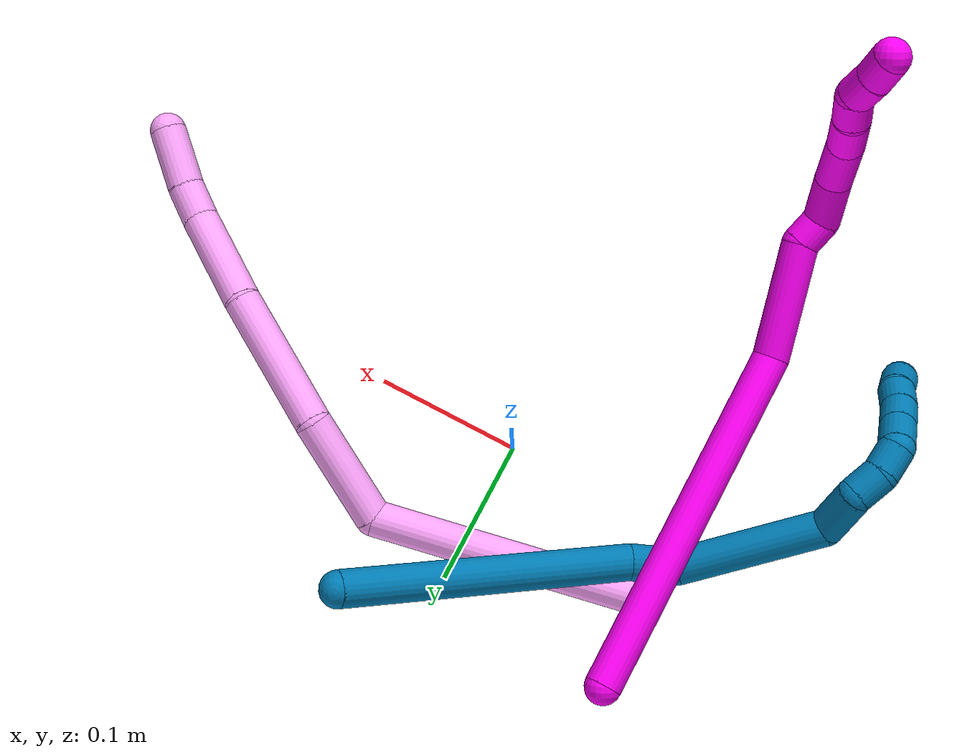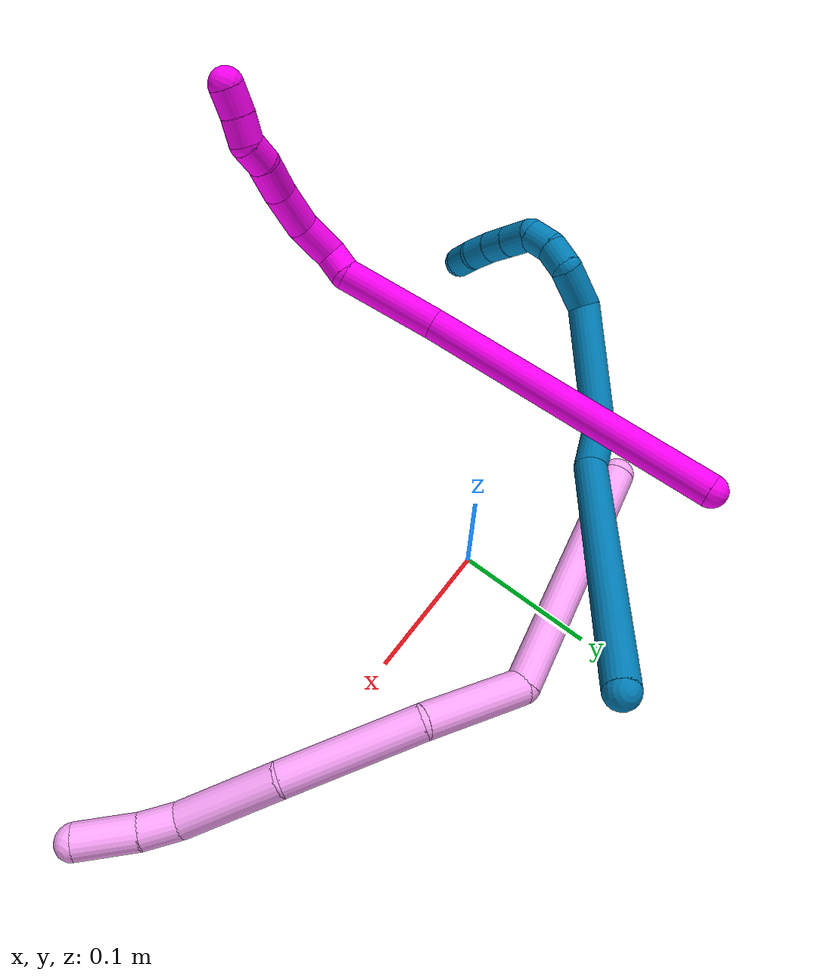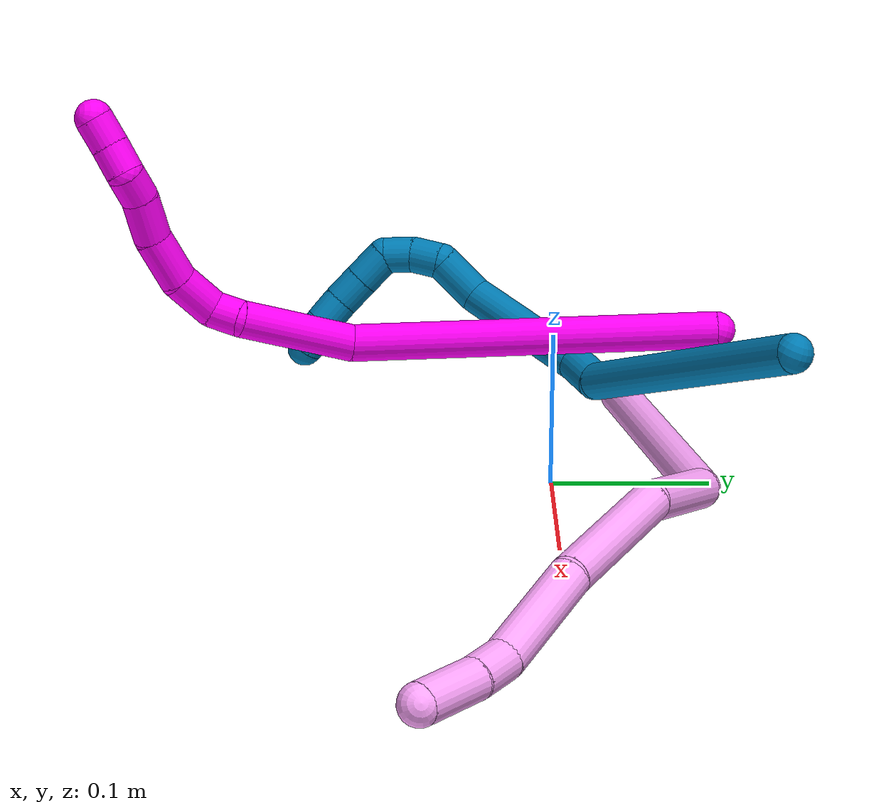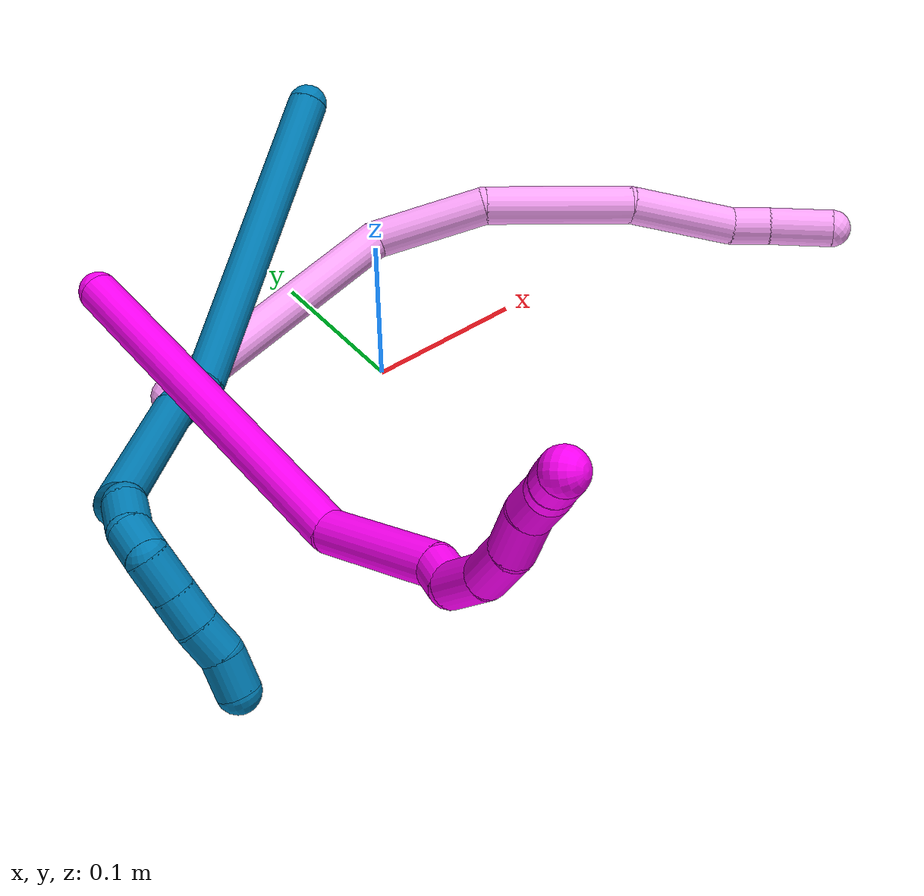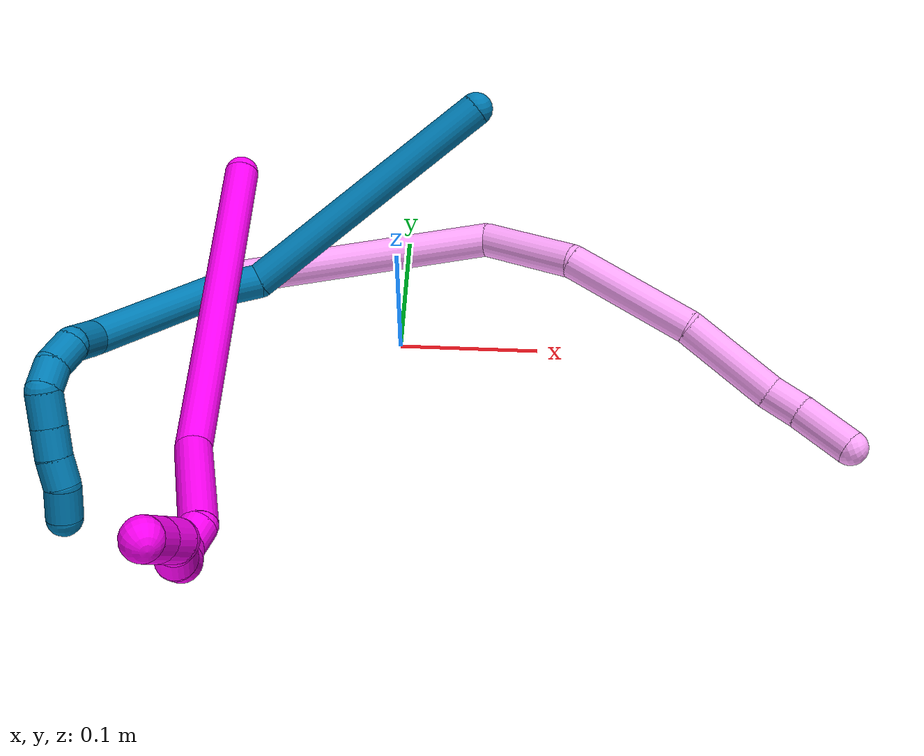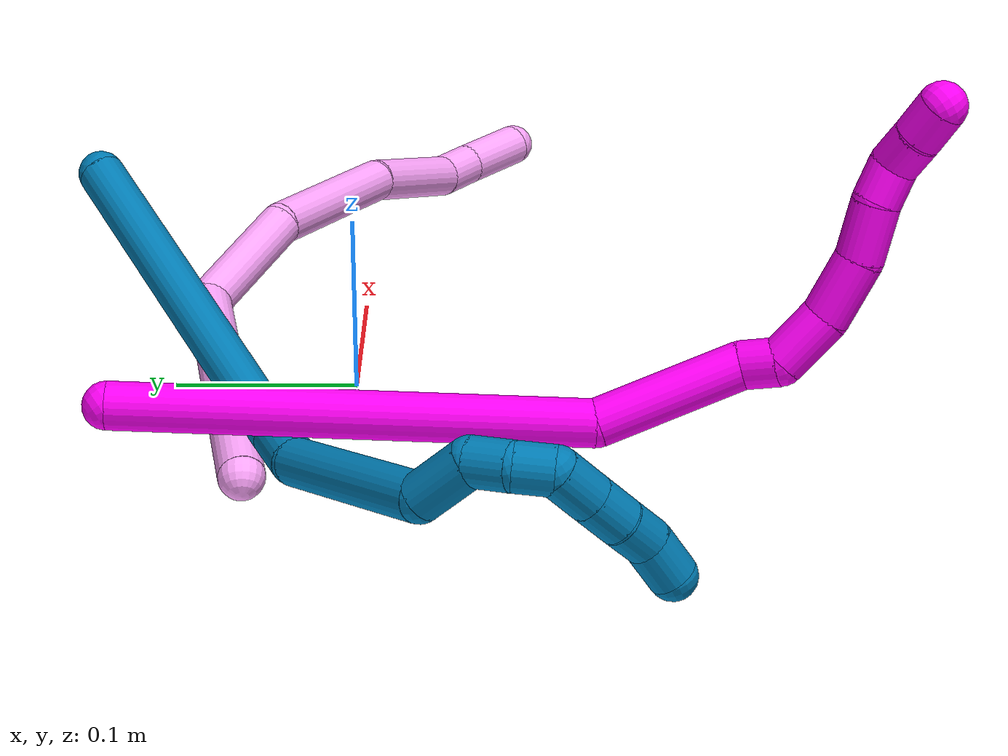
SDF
<sdf version="1.7">
 <world name="default">
  <model name="photoneo_s_sensor">
   <static>1</static>
   <pose>0 0 2 1.57079 1.57079 3.14159</pose>
   <link name="link">
    <inertial><mass>0.1</mass></inertial>
    <sensor name="sensor" type="depth">
     <update_rate>30</update_rate>
     <camera>
      <horizontal_fov>1.22</horizontal_fov>
      <image><width>1920</width><height>1200</height><format>B8G8R8</format></image>
      <clip><near>0.1</near><far>4</far></clip>
      <depth_camera><output>points</output></depth_camera>
     </camera>
     <plugin name="camera_plugin" filename="libgazebo_ros_depth_camera.so">
      <baseline>0.2</baseline>
      <alwaysOn>1</alwaysOn>
      <updateRate>0.0</updateRate>
      <cameraName>camera_ir</cameraName>
      <imageTopicName>/camera/color/image_raw</imageTopicName>
      <cameraInfoTopicName>/camera/color/camera_info</cameraInfoTopicName>
      <depthImageTopicName>/camera/depth/image_raw</depthImageTopicName>
      <depthImageCameraInfoTopicName>/camera/depth/camera_info</depthImageCameraInfoTopicName>
      <pointCloudTopicName>/camera/depth/points</pointCloudTopicName>
      <frameName>fr_optical</frameName>
      <pointCloudCutoff>0.1</pointCloudCutoff>
      <pointCloudCutoffMax>2.0</pointCloudCutoffMax>
      <distortionK1>0</distortionK1>
      <distortionK2>0</distortionK2>
      <distortionK3>0</distortionK3>
      <distortionT1>0</distortionT1>
      <distortionT2>0</distortionT2>
      <CxPrime>0</CxPrime>
      <Cx>0</Cx>
      <Cy>0</Cy>
      <focalLength>0</focalLength>
      <hackBaseline>0</hackBaseline>
     </plugin>
    </sensor>
   </link>
  </model>
  <model name="bin">
   <static>1</static>
   <link name="bottom">
    <collision name="collision-bottom">
     <pose>0 0 -0.01 0 -0 0</pose>
     <geometry><box><size>0.8 0.6 0.02</size></box></geometry>
     <surface>
      <friction><ode><mu>100</mu><mu2>100</mu2></ode></friction>
      <contact><collide_bitmask>65535</collide_bitmask></contact>
     </surface>
    </collision>
   </link>
   <link name="west_wall">
    <collision name="collision-west_wall">
     <pose>-0.41 0 0.1 0 -0 0</pose>
     <geometry><box><size>0.02 0.6 0.2</size></box></geometry>
     <surface>
      <friction><ode><mu>100</mu><mu2>100</mu2></ode></friction>
      <contact><collide_bitmask>65535</collide_bitmask></contact>
     </surface>
    </collision>
   </link>
   <link name="east_wall">
    <collision name="collision-east_wall">
     <pose>0.41 0 0.1 0 -0 0</pose>
     <geometry><box><size>0.02 0.6 0.2</size></box></geometry>
     <surface>
      <friction><ode><mu>100</mu><mu2>100</mu2></ode></friction>
      <contact><collide_bitmask>65535</collide_bitmask></contact>
     </surface>
    </collision>
   </link>
   <link name="south_wall">
    <collision name="collision-south_wall">
     <pose>0 -0.31 0.1 0 -0 0</pose>
     <geometry><box><size>0.8 0.02 0.2</size></box></geometry>
     <surface>
      <friction><ode><mu>100</mu><mu2>100</mu2></ode></friction>
      <contact><collide_bitmask>65535</collide_bitmask></contact>
     </surface>
    </collision>
   </link>
   <link name="north_wall">
    <collision name="collision-north_wall">
     <pose>0 0.31 0.1 0 -0 0</pose>
     <geometry><box><size>0.8 0.02 0.2</size></box></geometry>
     <surface>
      <friction><ode><mu>100</mu><mu2>100</mu2></ode></friction>
      <contact><collide_bitmask>65535</collide_bitmask></contact>
     </surface>
    </collision>
   </link>
  </model>
  <model name="4">
   <static>0</static>
   <link name="4">
    <collision name="collision-cylinder-e_1_1_4">
     <pose>0.03815 0.018562 0.081997 -0.222623 0.425988 -0.048338</pose>
     <geometry><cylinder><radius>0.0125</radius><length>0.184645</length></cylinder></geometry>
     <surface>
      <friction><ode><mu>1.16</mu><mu2>1.16</mu2><slip1>0</slip1><slip2>0</slip2></ode></friction>
      <contact><ode><kp>1e+06</kp><kd>1</kd><max_vel>0</max_vel><min_depth>0.001</min_depth></ode></contact>
     </surface>
    </collision>
    <visual name="visual-cylinder-e_1_1_4">
     <pose>0.03815 0.018562 0.081997 -0.222623 0.425988 -0.048338</pose>
     <geometry><cylinder><radius>0.0125</radius><length>0.184645</length></cylinder></geometry>
     <material><ambient>1 0.65098 0.996078 1</ambient></material>
    </visual>
    <collision name="collision-cylinder-e_2_4_5">
     <pose>0.087267 0.018096 0.194975 0.550777 0.292988 0.083338</pose>
     <geometry><cylinder><radius>0.0125</radius><length>0.075952</length></cylinder></geometry>
     <surface>
      <friction><ode><mu>1.16</mu><mu2>1.16</mu2><slip1>0</slip1><slip2>0</slip2></ode></friction>
      <contact><ode><kp>1e+06</kp><kd>1</kd><max_vel>0</max_vel><min_depth>0.001</min_depth></ode></contact>
     </surface>
    </collision>
    <visual name="visual-cylinder-e_2_4_5">
     <pose>0.087267 0.018096 0.194975 0.550777 0.292988 0.083338</pose>
     <geometry><cylinder><radius>0.0125</radius><length>0.075952</length></cylinder></geometry>
     <material><ambient>1 0.65098 0.996078 1</ambient></material>
    </visual>
    <collision name="collision-cylinder-e_3_5_6">
     <pose>0.127335 -0.024538 0.257722 0.639084 0.634003 0.216254</pose>
     <geometry><cylinder><radius>0.0125</radius><length>0.098249</length></cylinder></geometry>
     <surface>
      <friction><ode><mu>1.16</mu><mu2>1.16</mu2><slip1>0</slip1><slip2>0</slip2></ode></friction>
      <contact><ode><kp>1e+06</kp><kd>1</kd><max_vel>0</max_vel><min_depth>0.001</min_depth></ode></contact>
     </surface>
    </collision>
    <visual name="visual-cylinder-e_3_5_6">
     <pose>0.127335 -0.024538 0.257722 0.639084 0.634003 0.216254</pose>
     <geometry><cylinder><radius>0.0125</radius><length>0.098249</length></cylinder></geometry>
     <material><ambient>1 0.65098 0.996078 1</ambient></material>
    </visual>
    <collision name="collision-cylinder-e_4_6_7">
     <pose>0.183608 -0.064409 0.307235 0.741872 0.845831 0.346592</pose>
     <geometry><cylinder><radius>0.0125</radius><length>0.072603</length></cylinder></geometry>
     <surface>
      <friction><ode><mu>1.16</mu><mu2>1.16</mu2><slip1>0</slip1><slip2>0</slip2></ode></friction>
      <contact><ode><kp>1e+06</kp><kd>1</kd><max_vel>0</max_vel><min_depth>0.001</min_depth></ode></contact>
     </surface>
    </collision>
    <visual name="visual-cylinder-e_4_6_7">
     <pose>0.183608 -0.064409 0.307235 0.741872 0.845831 0.346592</pose>
     <geometry><cylinder><radius>0.0125</radius><length>0.072603</length></cylinder></geometry>
     <material><ambient>1 0.65098 0.996078 1</ambient></material>
    </visual>
    <collision name="collision-cylinder-e_5_7_8">
     <pose>0.217773 -0.088195 0.333192 0.741549 0.560752 0.222964</pose>
     <geometry><cylinder><radius>0.0125</radius><length>0.026298</length></cylinder></geometry>
     <surface>
      <friction><ode><mu>1.16</mu><mu2>1.16</mu2><slip1>0</slip1><slip2>0</slip2></ode></friction>
      <contact><ode><kp>1e+06</kp><kd>1</kd><max_vel>0</max_vel><min_depth>0.001</min_depth></ode></contact>
     </surface>
    </collision>
    <visual name="visual-cylinder-e_5_7_8">
     <pose>0.217773 -0.088195 0.333192 0.741549 0.560752 0.222964</pose>
     <geometry><cylinder><radius>0.0125</radius><length>0.026298</length></cylinder></geometry>
     <material><ambient>1 0.65098 0.996078 1</ambient></material>
    </visual>
    <collision name="collision-cylinder-e_6_8_2">
     <pose>0.23458 -0.109869 0.35364 0.857902 0.483081 0.224391</pose>
     <geometry><cylinder><radius>0.0125</radius><length>0.042254</length></cylinder></geometry>
     <surface>
      <friction><ode><mu>1.16</mu><mu2>1.16</mu2><slip1>0</slip1><slip2>0</slip2></ode></friction>
      <contact><ode><kp>1e+06</kp><kd>1</kd><max_vel>0</max_vel><min_depth>0.001</min_depth></ode></contact>
     </surface>
    </collision>
    <visual name="visual-cylinder-e_6_8_2">
     <pose>0.23458 -0.109869 0.35364 0.857902 0.483081 0.224391</pose>
     <geometry><cylinder><radius>0.0125</radius><length>0.042254</length></cylinder></geometry>
     <material><ambient>1 0.65098 0.996078 1</ambient></material>
    </visual>
    <collision name="collision-sphere-2">
     <pose>0.244393 -0.124022 0.365876 0 -0 0</pose>
     <geometry><sphere><radius>0.0125</radius></sphere></geometry>
     <surface>
      <friction><ode><mu>1.16</mu><mu2>1.16</mu2><slip1>0</slip1><slip2>0</slip2></ode></friction>
      <contact><ode><kp>1e+06</kp><kd>1</kd><max_vel>0</max_vel><min_depth>0.001</min_depth></ode></contact>
     </surface>
    </collision>
    <visual name="visual-sphere-2">
     <pose>0.244393 -0.124022 0.365876 0 -0 0</pose>
     <geometry><sphere><radius>0.0125</radius></sphere></geometry>
     <material><ambient>1 0.65098 0.996078 1</ambient></material>
    </visual>
    <collision name="collision-sphere-4">
     <pose>0.076299 0.037124 0.163994 0 -0 0</pose>
     <geometry><sphere><radius>0.0125</radius></sphere></geometry>
     <surface>
      <friction><ode><mu>1.16</mu><mu2>1.16</mu2><slip1>0</slip1><slip2>0</slip2></ode></friction>
      <contact><ode><kp>1e+06</kp><kd>1</kd><max_vel>0</max_vel><min_depth>0.001</min_depth></ode></contact>
     </surface>
    </collision>
    <visual name="visual-sphere-4">
     <pose>0.076299 0.037124 0.163994 0 -0 0</pose>
     <geometry><sphere><radius>0.0125</radius></sphere></geometry>
     <material><ambient>1 0.65098 0.996078 1</ambient></material>
    </visual>
    <collision name="collision-sphere-1">
     <geometry><sphere><radius>0.0125</radius></sphere></geometry>
     <surface>
      <friction><ode><mu>1.16</mu><mu2>1.16</mu2><slip1>0</slip1><slip2>0</slip2></ode></friction>
      <contact><ode><kp>1e+06</kp><kd>1</kd><max_vel>0</max_vel><min_depth>0.001</min_depth></ode></contact>
     </surface>
    </collision>
    <visual name="visual-sphere-1">
     <geometry><sphere><radius>0.0125</radius></sphere></geometry>
     <material><ambient>1 0.65098 0.996078 1</ambient></material>
    </visual>
    <collision name="collision-sphere-8">
     <pose>0.224766 -0.095716 0.341404 0 -0 0</pose>
     <geometry><sphere><radius>0.0125</radius></sphere></geometry>
     <surface>
      <friction><ode><mu>1.16</mu><mu2>1.16</mu2><slip1>0</slip1><slip2>0</slip2></ode></friction>
      <contact><ode><kp>1e+06</kp><kd>1</kd><max_vel>0</max_vel><min_depth>0.001</min_depth></ode></contact>
     </surface>
    </collision>
    <visual name="visual-sphere-8">
     <pose>0.224766 -0.095716 0.341404 0 -0 0</pose>
     <geometry><sphere><radius>0.0125</radius></sphere></geometry>
     <material><ambient>1 0.65098 0.996078 1</ambient></material>
    </visual>
    <collision name="collision-sphere-5">
     <pose>0.098235 -0.000931 0.225955 0 -0 0</pose>
     <geometry><sphere><radius>0.0125</radius></sphere></geometry>
     <surface>
      <friction><ode><mu>1.16</mu><mu2>1.16</mu2><slip1>0</slip1><slip2>0</slip2></ode></friction>
      <contact><ode><kp>1e+06</kp><kd>1</kd><max_vel>0</max_vel><min_depth>0.001</min_depth></ode></contact>
     </surface>
    </collision>
    <visual name="visual-sphere-5">
     <pose>0.098235 -0.000931 0.225955 0 -0 0</pose>
     <geometry><sphere><radius>0.0125</radius></sphere></geometry>
     <material><ambient>1 0.65098 0.996078 1</ambient></material>
    </visual>
    <collision name="collision-sphere-6">
     <pose>0.156435 -0.048144 0.289489 0 -0 0</pose>
     <geometry><sphere><radius>0.0125</radius></sphere></geometry>
     <surface>
      <friction><ode><mu>1.16</mu><mu2>1.16</mu2><slip1>0</slip1><slip2>0</slip2></ode></friction>
      <contact><ode><kp>1e+06</kp><kd>1</kd><max_vel>0</max_vel><min_depth>0.001</min_depth></ode></contact>
     </surface>
    </collision>
    <visual name="visual-sphere-6">
     <pose>0.156435 -0.048144 0.289489 0 -0 0</pose>
     <geometry><sphere><radius>0.0125</radius></sphere></geometry>
     <material><ambient>1 0.65098 0.996078 1</ambient></material>
    </visual>
    <collision name="collision-sphere-7">
     <pose>0.21078 -0.080674 0.324981 0 -0 0</pose>
     <geometry><sphere><radius>0.0125</radius></sphere></geometry>
     <surface>
      <friction><ode><mu>1.16</mu><mu2>1.16</mu2><slip1>0</slip1><slip2>0</slip2></ode></friction>
      <contact><ode><kp>1e+06</kp><kd>1</kd><max_vel>0</max_vel><min_depth>0.001</min_depth></ode></contact>
     </surface>
    </collision>
    <visual name="visual-sphere-7">
     <pose>0.21078 -0.080674 0.324981 0 -0 0</pose>
     <geometry><sphere><radius>0.0125</radius></sphere></geometry>
     <material><ambient>1 0.65098 0.996078 1</ambient></material>
    </visual>
    <inertial>
     <pose>0.110304 -0.018494 0.202562 0 -0 0</pose>
     <mass>0.5</mass>
     <inertia>
      <ixx>0.00064</ixx>
      <ixy>0</ixy>
      <ixz>0</ixz>
      <iyy>0.000658</iyy>
      <iyz>0</iyz>
      <izz>-0.000308</izz>
     </inertia>
    </inertial>
   </link>
   <pose>-0.121264 0.051284 0.012482 -0.372443 1.00578 -0.338971</pose>
  </model>
  <model name="9">
   <static>0</static>
   <link name="9">
    <collision name="collision-cylinder-e_1_1_4">
     <pose>-0.065361 -0.059107 0.05139 0.855123 -0.695427 -0.327352</pose>
     <geometry><cylinder><radius>0.0125</radius><length>0.204024</length></cylinder></geometry>
     <surface>
      <friction><ode><mu>1.16</mu><mu2>1.16</mu2><slip1>0</slip1><slip2>0</slip2></ode></friction>
      <contact><ode><kp>1e+06</kp><kd>1</kd><max_vel>0</max_vel><min_depth>0.001</min_depth></ode></contact>
     </surface>
    </collision>
    <visual name="visual-cylinder-e_1_1_4">
     <pose>-0.065361 -0.059107 0.05139 0.855123 -0.695427 -0.327352</pose>
     <geometry><cylinder><radius>0.0125</radius><length>0.204024</length></cylinder></geometry>
     <material><ambient>0 0.490196 0.709804 1</ambient></material>
    </visual>
    <collision name="collision-cylinder-e_2_4_5">
     <pose>-0.142162 -0.129417 0.103241 1.5296 -0.795428 -0.76642</pose>
     <geometry><cylinder><radius>0.0125</radius><length>0.032039</length></cylinder></geometry>
     <surface>
      <friction><ode><mu>1.16</mu><mu2>1.16</mu2><slip1>0</slip1><slip2>0</slip2></ode></friction>
      <contact><ode><kp>1e+06</kp><kd>1</kd><max_vel>0</max_vel><min_depth>0.001</min_depth></ode></contact>
     </surface>
    </collision>
    <visual name="visual-cylinder-e_2_4_5">
     <pose>-0.142162 -0.129417 0.103241 1.5296 -0.795428 -0.76642</pose>
     <geometry><cylinder><radius>0.0125</radius><length>0.032039</length></cylinder></geometry>
     <material><ambient>0 0.490196 0.709804 1</ambient></material>
    </visual>
    <collision name="collision-cylinder-e_3_5_6">
     <pose>-0.200192 -0.160124 0.10283 1.61555 -1.17398 -1.21562</pose>
     <geometry><cylinder><radius>0.0125</radius><length>0.10103</length></cylinder></geometry>
     <surface>
      <friction><ode><mu>1.16</mu><mu2>1.16</mu2><slip1>0</slip1><slip2>0</slip2></ode></friction>
      <contact><ode><kp>1e+06</kp><kd>1</kd><max_vel>0</max_vel><min_depth>0.001</min_depth></ode></contact>
     </surface>
    </collision>
    <visual name="visual-cylinder-e_3_5_6">
     <pose>-0.200192 -0.160124 0.10283 1.61555 -1.17398 -1.21562</pose>
     <geometry><cylinder><radius>0.0125</radius><length>0.10103</length></cylinder></geometry>
     <material><ambient>0 0.490196 0.709804 1</ambient></material>
    </visual>
    <collision name="collision-cylinder-e_4_6_7">
     <pose>-0.261887 -0.175569 0.095363 -2.58984 -1.09714 2.274</pose>
     <geometry><cylinder><radius>0.0125</radius><length>0.033947</length></cylinder></geometry>
     <surface>
      <friction><ode><mu>1.16</mu><mu2>1.16</mu2><slip1>0</slip1><slip2>0</slip2></ode></friction>
      <contact><ode><kp>1e+06</kp><kd>1</kd><max_vel>0</max_vel><min_depth>0.001</min_depth></ode></contact>
     </surface>
    </collision>
    <visual name="visual-cylinder-e_4_6_7">
     <pose>-0.261887 -0.175569 0.095363 -2.58984 -1.09714 2.274</pose>
     <geometry><cylinder><radius>0.0125</radius><length>0.033947</length></cylinder></geometry>
     <material><ambient>0 0.490196 0.709804 1</ambient></material>
    </visual>
    <collision name="collision-cylinder-e_5_7_8">
     <pose>-0.287527 -0.171552 0.091098 0.017643 -1.35326 -0.014169</pose>
     <geometry><cylinder><radius>0.0125</radius><length>0.021579</length></cylinder></geometry>
     <surface>
      <friction><ode><mu>1.16</mu><mu2>1.16</mu2><slip1>0</slip1><slip2>0</slip2></ode></friction>
      <contact><ode><kp>1e+06</kp><kd>1</kd><max_vel>0</max_vel><min_depth>0.001</min_depth></ode></contact>
     </surface>
    </collision>
    <visual name="visual-cylinder-e_5_7_8">
     <pose>-0.287527 -0.171552 0.091098 0.017643 -1.35326 -0.014169</pose>
     <geometry><cylinder><radius>0.0125</radius><length>0.021579</length></cylinder></geometry>
     <material><ambient>0 0.490196 0.709804 1</ambient></material>
    </visual>
    <collision name="collision-cylinder-e_6_8_9">
     <pose>-0.306909 -0.168955 0.097547 -0.569444 -1.06559 0.341798</pose>
     <geometry><cylinder><radius>0.0125</radius><length>0.020221</length></cylinder></geometry>
     <surface>
      <friction><ode><mu>1.16</mu><mu2>1.16</mu2><slip1>0</slip1><slip2>0</slip2></ode></friction>
      <contact><ode><kp>1e+06</kp><kd>1</kd><max_vel>0</max_vel><min_depth>0.001</min_depth></ode></contact>
     </surface>
    </collision>
    <visual name="visual-cylinder-e_6_8_9">
     <pose>-0.306909 -0.168955 0.097547 -0.569444 -1.06559 0.341798</pose>
     <geometry><cylinder><radius>0.0125</radius><length>0.020221</length></cylinder></geometry>
     <material><ambient>0 0.490196 0.709804 1</ambient></material>
    </visual>
    <collision name="collision-cylinder-e_7_9_10">
     <pose>-0.319434 -0.163314 0.112447 -0.271682 -0.317528 0.043762</pose>
     <geometry><cylinder><radius>0.0125</radius><length>0.023554</length></cylinder></geometry>
     <surface>
      <friction><ode><mu>1.16</mu><mu2>1.16</mu2><slip1>0</slip1><slip2>0</slip2></ode></friction>
      <contact><ode><kp>1e+06</kp><kd>1</kd><max_vel>0</max_vel><min_depth>0.001</min_depth></ode></contact>
     </surface>
    </collision>
    <visual name="visual-cylinder-e_7_9_10">
     <pose>-0.319434 -0.163314 0.112447 -0.271682 -0.317528 0.043762</pose>
     <geometry><cylinder><radius>0.0125</radius><length>0.023554</length></cylinder></geometry>
     <material><ambient>0 0.490196 0.709804 1</ambient></material>
    </visual>
    <collision name="collision-cylinder-e_8_10_11">
     <pose>-0.326423 -0.157605 0.132802 -0.275448 -0.321296 0.044912</pose>
     <geometry><cylinder><radius>0.0125</radius><length>0.020979</length></cylinder></geometry>
     <surface>
      <friction><ode><mu>1.16</mu><mu2>1.16</mu2><slip1>0</slip1><slip2>0</slip2></ode></friction>
      <contact><ode><kp>1e+06</kp><kd>1</kd><max_vel>0</max_vel><min_depth>0.001</min_depth></ode></contact>
     </surface>
    </collision>
    <visual name="visual-cylinder-e_8_10_11">
     <pose>-0.326423 -0.157605 0.132802 -0.275448 -0.321296 0.044912</pose>
     <geometry><cylinder><radius>0.0125</radius><length>0.020979</length></cylinder></geometry>
     <material><ambient>0 0.490196 0.709804 1</ambient></material>
    </visual>
    <collision name="collision-cylinder-e_9_11_12">
     <pose>-0.332027 -0.151451 0.151541 -0.359856 -0.229988 0.042013</pose>
     <geometry><cylinder><radius>0.0125</radius><length>0.020106</length></cylinder></geometry>
     <surface>
      <friction><ode><mu>1.16</mu><mu2>1.16</mu2><slip1>0</slip1><slip2>0</slip2></ode></friction>
      <contact><ode><kp>1e+06</kp><kd>1</kd><max_vel>0</max_vel><min_depth>0.001</min_depth></ode></contact>
     </surface>
    </collision>
    <visual name="visual-cylinder-e_9_11_12">
     <pose>-0.332027 -0.151451 0.151541 -0.359856 -0.229988 0.042013</pose>
     <geometry><cylinder><radius>0.0125</radius><length>0.020106</length></cylinder></geometry>
     <material><ambient>0 0.490196 0.709804 1</ambient></material>
    </visual>
    <collision name="collision-cylinder-e_10_12_2">
     <pose>-0.336741 -0.147493 0.171687 -0.046449 -0.216731 0.005054</pose>
     <geometry><cylinder><radius>0.0125</radius><length>0.022521</length></cylinder></geometry>
     <surface>
      <friction><ode><mu>1.16</mu><mu2>1.16</mu2><slip1>0</slip1><slip2>0</slip2></ode></friction>
      <contact><ode><kp>1e+06</kp><kd>1</kd><max_vel>0</max_vel><min_depth>0.001</min_depth></ode></contact>
     </surface>
    </collision>
    <visual name="visual-cylinder-e_10_12_2">
     <pose>-0.336741 -0.147493 0.171687 -0.046449 -0.216731 0.005054</pose>
     <geometry><cylinder><radius>0.0125</radius><length>0.022521</length></cylinder></geometry>
     <material><ambient>0 0.490196 0.709804 1</ambient></material>
    </visual>
    <collision name="collision-sphere-2">
     <pose>-0.339162 -0.146983 0.182673 0 -0 0</pose>
     <geometry><sphere><radius>0.0125</radius></sphere></geometry>
     <surface>
      <friction><ode><mu>1.16</mu><mu2>1.16</mu2><slip1>0</slip1><slip2>0</slip2></ode></friction>
      <contact><ode><kp>1e+06</kp><kd>1</kd><max_vel>0</max_vel><min_depth>0.001</min_depth></ode></contact>
     </surface>
    </collision>
    <visual name="visual-sphere-2">
     <pose>-0.339162 -0.146983 0.182673 0 -0 0</pose>
     <geometry><sphere><radius>0.0125</radius></sphere></geometry>
     <material><ambient>0 0.490196 0.709804 1</ambient></material>
    </visual>
    <collision name="collision-sphere-12">
     <pose>-0.334319 -0.148004 0.160702 0 -0 0</pose>
     <geometry><sphere><radius>0.0125</radius></sphere></geometry>
     <surface>
      <friction><ode><mu>1.16</mu><mu2>1.16</mu2><slip1>0</slip1><slip2>0</slip2></ode></friction>
      <contact><ode><kp>1e+06</kp><kd>1</kd><max_vel>0</max_vel><min_depth>0.001</min_depth></ode></contact>
     </surface>
    </collision>
    <visual name="visual-sphere-12">
     <pose>-0.334319 -0.148004 0.160702 0 -0 0</pose>
     <geometry><sphere><radius>0.0125</radius></sphere></geometry>
     <material><ambient>0 0.490196 0.709804 1</ambient></material>
    </visual>
    <collision name="collision-sphere-11">
     <pose>-0.329736 -0.154898 0.14238 0 -0 0</pose>
     <geometry><sphere><radius>0.0125</radius></sphere></geometry>
     <surface>
      <friction><ode><mu>1.16</mu><mu2>1.16</mu2><slip1>0</slip1><slip2>0</slip2></ode></friction>
      <contact><ode><kp>1e+06</kp><kd>1</kd><max_vel>0</max_vel><min_depth>0.001</min_depth></ode></contact>
     </surface>
    </collision>
    <visual name="visual-sphere-11">
     <pose>-0.329736 -0.154898 0.14238 0 -0 0</pose>
     <geometry><sphere><radius>0.0125</radius></sphere></geometry>
     <material><ambient>0 0.490196 0.709804 1</ambient></material>
    </visual>
    <collision name="collision-sphere-10">
     <pose>-0.323111 -0.160312 0.123225 0 -0 0</pose>
     <geometry><sphere><radius>0.0125</radius></sphere></geometry>
     <surface>
      <friction><ode><mu>1.16</mu><mu2>1.16</mu2><slip1>0</slip1><slip2>0</slip2></ode></friction>
      <contact><ode><kp>1e+06</kp><kd>1</kd><max_vel>0</max_vel><min_depth>0.001</min_depth></ode></contact>
     </surface>
    </collision>
    <visual name="visual-sphere-10">
     <pose>-0.323111 -0.160312 0.123225 0 -0 0</pose>
     <geometry><sphere><radius>0.0125</radius></sphere></geometry>
     <material><ambient>0 0.490196 0.709804 1</ambient></material>
    </visual>
    <collision name="collision-sphere-9">
     <pose>-0.315757 -0.166316 0.101669 0 -0 0</pose>
     <geometry><sphere><radius>0.0125</radius></sphere></geometry>
     <surface>
      <friction><ode><mu>1.16</mu><mu2>1.16</mu2><slip1>0</slip1><slip2>0</slip2></ode></friction>
      <contact><ode><kp>1e+06</kp><kd>1</kd><max_vel>0</max_vel><min_depth>0.001</min_depth></ode></contact>
     </surface>
    </collision>
    <visual name="visual-sphere-9">
     <pose>-0.315757 -0.166316 0.101669 0 -0 0</pose>
     <geometry><sphere><radius>0.0125</radius></sphere></geometry>
     <material><ambient>0 0.490196 0.709804 1</ambient></material>
    </visual>
    <collision name="collision-sphere-4">
     <pose>-0.130721 -0.118213 0.102779 0 -0 0</pose>
     <geometry><sphere><radius>0.0125</radius></sphere></geometry>
     <surface>
      <friction><ode><mu>1.16</mu><mu2>1.16</mu2><slip1>0</slip1><slip2>0</slip2></ode></friction>
      <contact><ode><kp>1e+06</kp><kd>1</kd><max_vel>0</max_vel><min_depth>0.001</min_depth></ode></contact>
     </surface>
    </collision>
    <visual name="visual-sphere-4">
     <pose>-0.130721 -0.118213 0.102779 0 -0 0</pose>
     <geometry><sphere><radius>0.0125</radius></sphere></geometry>
     <material><ambient>0 0.490196 0.709804 1</ambient></material>
    </visual>
    <collision name="collision-sphere-1">
     <geometry><sphere><radius>0.0125</radius></sphere></geometry>
     <surface>
      <friction><ode><mu>1.16</mu><mu2>1.16</mu2><slip1>0</slip1><slip2>0</slip2></ode></friction>
      <contact><ode><kp>1e+06</kp><kd>1</kd><max_vel>0</max_vel><min_depth>0.001</min_depth></ode></contact>
     </surface>
    </collision>
    <visual name="visual-sphere-1">
     <geometry><sphere><radius>0.0125</radius></sphere></geometry>
     <material><ambient>0 0.490196 0.709804 1</ambient></material>
    </visual>
    <collision name="collision-sphere-8">
     <pose>-0.298062 -0.171593 0.093426 0 -0 0</pose>
     <geometry><sphere><radius>0.0125</radius></sphere></geometry>
     <surface>
      <friction><ode><mu>1.16</mu><mu2>1.16</mu2><slip1>0</slip1><slip2>0</slip2></ode></friction>
      <contact><ode><kp>1e+06</kp><kd>1</kd><max_vel>0</max_vel><min_depth>0.001</min_depth></ode></contact>
     </surface>
    </collision>
    <visual name="visual-sphere-8">
     <pose>-0.298062 -0.171593 0.093426 0 -0 0</pose>
     <geometry><sphere><radius>0.0125</radius></sphere></geometry>
     <material><ambient>0 0.490196 0.709804 1</ambient></material>
    </visual>
    <collision name="collision-sphere-5">
     <pose>-0.153602 -0.140621 0.103703 0 -0 0</pose>
     <geometry><sphere><radius>0.0125</radius></sphere></geometry>
     <surface>
      <friction><ode><mu>1.16</mu><mu2>1.16</mu2><slip1>0</slip1><slip2>0</slip2></ode></friction>
      <contact><ode><kp>1e+06</kp><kd>1</kd><max_vel>0</max_vel><min_depth>0.001</min_depth></ode></contact>
     </surface>
    </collision>
    <visual name="visual-sphere-5">
     <pose>-0.153602 -0.140621 0.103703 0 -0 0</pose>
     <geometry><sphere><radius>0.0125</radius></sphere></geometry>
     <material><ambient>0 0.490196 0.709804 1</ambient></material>
    </visual>
    <collision name="collision-sphere-6">
     <pose>-0.246782 -0.179628 0.101956 0 -0 0</pose>
     <geometry><sphere><radius>0.0125</radius></sphere></geometry>
     <surface>
      <friction><ode><mu>1.16</mu><mu2>1.16</mu2><slip1>0</slip1><slip2>0</slip2></ode></friction>
      <contact><ode><kp>1e+06</kp><kd>1</kd><max_vel>0</max_vel><min_depth>0.001</min_depth></ode></contact>
     </surface>
    </collision>
    <visual name="visual-sphere-6">
     <pose>-0.246782 -0.179628 0.101956 0 -0 0</pose>
     <geometry><sphere><radius>0.0125</radius></sphere></geometry>
     <material><ambient>0 0.490196 0.709804 1</ambient></material>
    </visual>
    <collision name="collision-sphere-7">
     <pose>-0.276992 -0.171511 0.08877 0 -0 0</pose>
     <geometry><sphere><radius>0.0125</radius></sphere></geometry>
     <surface>
      <friction><ode><mu>1.16</mu><mu2>1.16</mu2><slip1>0</slip1><slip2>0</slip2></ode></friction>
      <contact><ode><kp>1e+06</kp><kd>1</kd><max_vel>0</max_vel><min_depth>0.001</min_depth></ode></contact>
     </surface>
    </collision>
    <visual name="visual-sphere-7">
     <pose>-0.276992 -0.171511 0.08877 0 -0 0</pose>
     <geometry><sphere><radius>0.0125</radius></sphere></geometry>
     <material><ambient>0 0.490196 0.709804 1</ambient></material>
    </visual>
    <inertial>
     <pose>-0.176095 -0.117962 0.08741 0 -0 0</pose>
     <mass>0.5</mass>
     <inertia>
      <ixx>0.000305</ixx>
      <ixy>0</ixy>
      <ixz>0</ixz>
      <iyy>0.000428</iyy>
      <iyz>0</iyz>
      <izz>0.001017</izz>
     </inertia>
    </inertial>
   </link>
   <pose>0.048671 0.141603 0.106062 2.93521 0.314985 1.13203</pose>
  </model>
  <model name="10">
   <static>0</static>
   <link name="10">
    <collision name="collision-cylinder-e_1_1_4">
     <pose>-0.009488 -0.071182 0.099097 0.622906 -0.077605 -0.024995</pose>
     <geometry><cylinder><radius>0.0125</radius><length>0.244762</length></cylinder></geometry>
     <surface>
      <friction><ode><mu>1.16</mu><mu2>1.16</mu2><slip1>0</slip1><slip2>0</slip2></ode></friction>
      <contact><ode><kp>1e+06</kp><kd>1</kd><max_vel>0</max_vel><min_depth>0.001</min_depth></ode></contact>
     </surface>
    </collision>
    <visual name="visual-cylinder-e_1_1_4">
     <pose>-0.009488 -0.071182 0.099097 0.622906 -0.077605 -0.024995</pose>
     <geometry><cylinder><radius>0.0125</radius><length>0.244762</length></cylinder></geometry>
     <material><ambient>1 0 0.964706 1</ambient></material>
    </visual>
    <collision name="collision-cylinder-e_2_4_5">
     <pose>-0.022999 -0.150303 0.236513 0.204298 -0.10246 -0.010512</pose>
     <geometry><cylinder><radius>0.0125</radius><length>0.078678</length></cylinder></geometry>
     <surface>
      <friction><ode><mu>1.16</mu><mu2>1.16</mu2><slip1>0</slip1><slip2>0</slip2></ode></friction>
      <contact><ode><kp>1e+06</kp><kd>1</kd><max_vel>0</max_vel><min_depth>0.001</min_depth></ode></contact>
     </surface>
    </collision>
    <visual name="visual-cylinder-e_2_4_5">
     <pose>-0.022999 -0.150303 0.236513 0.204298 -0.10246 -0.010512</pose>
     <geometry><cylinder><radius>0.0125</radius><length>0.078678</length></cylinder></geometry>
     <material><ambient>1 0 0.964706 1</ambient></material>
    </visual>
    <collision name="collision-cylinder-e_3_5_6">
     <pose>-0.03157 -0.16314 0.282456 0.571009 -0.464993 -0.138777</pose>
     <geometry><cylinder><radius>0.0125</radius><length>0.020278</length></cylinder></geometry>
     <surface>
      <friction><ode><mu>1.16</mu><mu2>1.16</mu2><slip1>0</slip1><slip2>0</slip2></ode></friction>
      <contact><ode><kp>1e+06</kp><kd>1</kd><max_vel>0</max_vel><min_depth>0.001</min_depth></ode></contact>
     </surface>
    </collision>
    <visual name="visual-cylinder-e_3_5_6">
     <pose>-0.03157 -0.16314 0.282456 0.571009 -0.464993 -0.138777</pose>
     <geometry><cylinder><radius>0.0125</radius><length>0.020278</length></cylinder></geometry>
     <material><ambient>1 0 0.964706 1</ambient></material>
    </visual>
    <collision name="collision-cylinder-e_4_6_7">
     <pose>-0.041935 -0.165053 0.304506 -0.204055 -0.376201 0.038973</pose>
     <geometry><cylinder><radius>0.0125</radius><length>0.031676</length></cylinder></geometry>
     <surface>
      <friction><ode><mu>1.16</mu><mu2>1.16</mu2><slip1>0</slip1><slip2>0</slip2></ode></friction>
      <contact><ode><kp>1e+06</kp><kd>1</kd><max_vel>0</max_vel><min_depth>0.001</min_depth></ode></contact>
     </surface>
    </collision>
    <visual name="visual-cylinder-e_4_6_7">
     <pose>-0.041935 -0.165053 0.304506 -0.204055 -0.376201 0.038973</pose>
     <geometry><cylinder><radius>0.0125</radius><length>0.031676</length></cylinder></geometry>
     <material><ambient>1 0 0.964706 1</ambient></material>
    </visual>
    <collision name="collision-cylinder-e_5_7_8">
     <pose>-0.056355 -0.155098 0.33195 -0.491542 -0.527422 0.135248</pose>
     <geometry><cylinder><radius>0.0125</radius><length>0.034179</length></cylinder></geometry>
     <surface>
      <friction><ode><mu>1.16</mu><mu2>1.16</mu2><slip1>0</slip1><slip2>0</slip2></ode></friction>
      <contact><ode><kp>1e+06</kp><kd>1</kd><max_vel>0</max_vel><min_depth>0.001</min_depth></ode></contact>
     </surface>
    </collision>
    <visual name="visual-cylinder-e_5_7_8">
     <pose>-0.056355 -0.155098 0.33195 -0.491542 -0.527422 0.135248</pose>
     <geometry><cylinder><radius>0.0125</radius><length>0.034179</length></cylinder></geometry>
     <material><ambient>1 0 0.964706 1</ambient></material>
    </visual>
    <collision name="collision-cylinder-e_6_8_9">
     <pose>-0.072383 -0.139247 0.354271 -0.762217 -0.523651 0.213937</pose>
     <geometry><cylinder><radius>0.0125</radius><length>0.029703</length></cylinder></geometry>
     <surface>
      <friction><ode><mu>1.16</mu><mu2>1.16</mu2><slip1>0</slip1><slip2>0</slip2></ode></friction>
      <contact><ode><kp>1e+06</kp><kd>1</kd><max_vel>0</max_vel><min_depth>0.001</min_depth></ode></contact>
     </surface>
    </collision>
    <visual name="visual-cylinder-e_6_8_9">
     <pose>-0.072383 -0.139247 0.354271 -0.762217 -0.523651 0.213937</pose>
     <geometry><cylinder><radius>0.0125</radius><length>0.029703</length></cylinder></geometry>
     <material><ambient>1 0 0.964706 1</ambient></material>
    </visual>
    <collision name="collision-cylinder-e_7_9_10">
     <pose>-0.083701 -0.125297 0.371408 -0.574306 -0.39514 0.118096</pose>
     <geometry><cylinder><radius>0.0125</radius><length>0.02022</length></cylinder></geometry>
     <surface>
      <friction><ode><mu>1.16</mu><mu2>1.16</mu2><slip1>0</slip1><slip2>0</slip2></ode></friction>
      <contact><ode><kp>1e+06</kp><kd>1</kd><max_vel>0</max_vel><min_depth>0.001</min_depth></ode></contact>
     </surface>
    </collision>
    <visual name="visual-cylinder-e_7_9_10">
     <pose>-0.083701 -0.125297 0.371408 -0.574306 -0.39514 0.118096</pose>
     <geometry><cylinder><radius>0.0125</radius><length>0.02022</length></cylinder></geometry>
     <material><ambient>1 0 0.964706 1</ambient></material>
    </visual>
    <collision name="collision-cylinder-e_8_10_11">
     <pose>-0.095401 -0.118412 0.385377 -0.287823 -0.88432 0.136996</pose>
     <geometry><cylinder><radius>0.0125</radius><length>0.020192</length></cylinder></geometry>
     <surface>
      <friction><ode><mu>1.16</mu><mu2>1.16</mu2><slip1>0</slip1><slip2>0</slip2></ode></friction>
      <contact><ode><kp>1e+06</kp><kd>1</kd><max_vel>0</max_vel><min_depth>0.001</min_depth></ode></contact>
     </surface>
    </collision>
    <visual name="visual-cylinder-e_8_10_11">
     <pose>-0.095401 -0.118412 0.385377 -0.287823 -0.88432 0.136996</pose>
     <geometry><cylinder><radius>0.0125</radius><length>0.020192</length></cylinder></geometry>
     <material><ambient>1 0 0.964706 1</ambient></material>
    </visual>
    <collision name="collision-cylinder-e_9_11_2">
     <pose>-0.11038 -0.114256 0.398315 -0.331292 -0.783745 0.137952</pose>
     <geometry><cylinder><radius>0.0125</radius><length>0.020312</length></cylinder></geometry>
     <surface>
      <friction><ode><mu>1.16</mu><mu2>1.16</mu2><slip1>0</slip1><slip2>0</slip2></ode></friction>
      <contact><ode><kp>1e+06</kp><kd>1</kd><max_vel>0</max_vel><min_depth>0.001</min_depth></ode></contact>
     </surface>
    </collision>
    <visual name="visual-cylinder-e_9_11_2">
     <pose>-0.11038 -0.114256 0.398315 -0.331292 -0.783745 0.137952</pose>
     <geometry><cylinder><radius>0.0125</radius><length>0.020312</length></cylinder></geometry>
     <material><ambient>1 0 0.964706 1</ambient></material>
    </visual>
    <collision name="collision-sphere-2">
     <pose>-0.11755 -0.111916 0.405118 0 -0 0</pose>
     <geometry><sphere><radius>0.0125</radius></sphere></geometry>
     <surface>
      <friction><ode><mu>1.16</mu><mu2>1.16</mu2><slip1>0</slip1><slip2>0</slip2></ode></friction>
      <contact><ode><kp>1e+06</kp><kd>1</kd><max_vel>0</max_vel><min_depth>0.001</min_depth></ode></contact>
     </surface>
    </collision>
    <visual name="visual-sphere-2">
     <pose>-0.11755 -0.111916 0.405118 0 -0 0</pose>
     <geometry><sphere><radius>0.0125</radius></sphere></geometry>
     <material><ambient>1 0 0.964706 1</ambient></material>
    </visual>
    <collision name="collision-sphere-11">
     <pose>-0.10321 -0.116596 0.391513 0 -0 0</pose>
     <geometry><sphere><radius>0.0125</radius></sphere></geometry>
     <surface>
      <friction><ode><mu>1.16</mu><mu2>1.16</mu2><slip1>0</slip1><slip2>0</slip2></ode></friction>
      <contact><ode><kp>1e+06</kp><kd>1</kd><max_vel>0</max_vel><min_depth>0.001</min_depth></ode></contact>
     </surface>
    </collision>
    <visual name="visual-sphere-11">
     <pose>-0.10321 -0.116596 0.391513 0 -0 0</pose>
     <geometry><sphere><radius>0.0125</radius></sphere></geometry>
     <material><ambient>1 0 0.964706 1</ambient></material>
    </visual>
    <collision name="collision-sphere-10">
     <pose>-0.087592 -0.120229 0.379242 0 -0 0</pose>
     <geometry><sphere><radius>0.0125</radius></sphere></geometry>
     <surface>
      <friction><ode><mu>1.16</mu><mu2>1.16</mu2><slip1>0</slip1><slip2>0</slip2></ode></friction>
      <contact><ode><kp>1e+06</kp><kd>1</kd><max_vel>0</max_vel><min_depth>0.001</min_depth></ode></contact>
     </surface>
    </collision>
    <visual name="visual-sphere-10">
     <pose>-0.087592 -0.120229 0.379242 0 -0 0</pose>
     <geometry><sphere><radius>0.0125</radius></sphere></geometry>
     <material><ambient>1 0 0.964706 1</ambient></material>
    </visual>
    <collision name="collision-sphere-9">
     <pose>-0.079809 -0.130366 0.363574 0 -0 0</pose>
     <geometry><sphere><radius>0.0125</radius></sphere></geometry>
     <surface>
      <friction><ode><mu>1.16</mu><mu2>1.16</mu2><slip1>0</slip1><slip2>0</slip2></ode></friction>
      <contact><ode><kp>1e+06</kp><kd>1</kd><max_vel>0</max_vel><min_depth>0.001</min_depth></ode></contact>
     </surface>
    </collision>
    <visual name="visual-sphere-9">
     <pose>-0.079809 -0.130366 0.363574 0 -0 0</pose>
     <geometry><sphere><radius>0.0125</radius></sphere></geometry>
     <material><ambient>1 0 0.964706 1</ambient></material>
    </visual>
    <collision name="collision-sphere-4">
     <pose>-0.018976 -0.142364 0.198194 0 -0 0</pose>
     <geometry><sphere><radius>0.0125</radius></sphere></geometry>
     <surface>
      <friction><ode><mu>1.16</mu><mu2>1.16</mu2><slip1>0</slip1><slip2>0</slip2></ode></friction>
      <contact><ode><kp>1e+06</kp><kd>1</kd><max_vel>0</max_vel><min_depth>0.001</min_depth></ode></contact>
     </surface>
    </collision>
    <visual name="visual-sphere-4">
     <pose>-0.018976 -0.142364 0.198194 0 -0 0</pose>
     <geometry><sphere><radius>0.0125</radius></sphere></geometry>
     <material><ambient>1 0 0.964706 1</ambient></material>
    </visual>
    <collision name="collision-sphere-1">
     <geometry><sphere><radius>0.0125</radius></sphere></geometry>
     <surface>
      <friction><ode><mu>1.16</mu><mu2>1.16</mu2><slip1>0</slip1><slip2>0</slip2></ode></friction>
      <contact><ode><kp>1e+06</kp><kd>1</kd><max_vel>0</max_vel><min_depth>0.001</min_depth></ode></contact>
     </surface>
    </collision>
    <visual name="visual-sphere-1">
     <geometry><sphere><radius>0.0125</radius></sphere></geometry>
     <material><ambient>1 0 0.964706 1</ambient></material>
    </visual>
    <collision name="collision-sphere-8">
     <pose>-0.064956 -0.148129 0.344969 0 -0 0</pose>
     <geometry><sphere><radius>0.0125</radius></sphere></geometry>
     <surface>
      <friction><ode><mu>1.16</mu><mu2>1.16</mu2><slip1>0</slip1><slip2>0</slip2></ode></friction>
      <contact><ode><kp>1e+06</kp><kd>1</kd><max_vel>0</max_vel><min_depth>0.001</min_depth></ode></contact>
     </surface>
    </collision>
    <visual name="visual-sphere-8">
     <pose>-0.064956 -0.148129 0.344969 0 -0 0</pose>
     <geometry><sphere><radius>0.0125</radius></sphere></geometry>
     <material><ambient>1 0 0.964706 1</ambient></material>
    </visual>
    <collision name="collision-sphere-5">
     <pose>-0.027023 -0.158242 0.274831 0 -0 0</pose>
     <geometry><sphere><radius>0.0125</radius></sphere></geometry>
     <surface>
      <friction><ode><mu>1.16</mu><mu2>1.16</mu2><slip1>0</slip1><slip2>0</slip2></ode></friction>
      <contact><ode><kp>1e+06</kp><kd>1</kd><max_vel>0</max_vel><min_depth>0.001</min_depth></ode></contact>
     </surface>
    </collision>
    <visual name="visual-sphere-5">
     <pose>-0.027023 -0.158242 0.274831 0 -0 0</pose>
     <geometry><sphere><radius>0.0125</radius></sphere></geometry>
     <material><ambient>1 0 0.964706 1</ambient></material>
    </visual>
    <collision name="collision-sphere-6">
     <pose>-0.036116 -0.168038 0.290081 0 -0 0</pose>
     <geometry><sphere><radius>0.0125</radius></sphere></geometry>
     <surface>
      <friction><ode><mu>1.16</mu><mu2>1.16</mu2><slip1>0</slip1><slip2>0</slip2></ode></friction>
      <contact><ode><kp>1e+06</kp><kd>1</kd><max_vel>0</max_vel><min_depth>0.001</min_depth></ode></contact>
     </surface>
    </collision>
    <visual name="visual-sphere-6">
     <pose>-0.036116 -0.168038 0.290081 0 -0 0</pose>
     <geometry><sphere><radius>0.0125</radius></sphere></geometry>
     <material><ambient>1 0 0.964706 1</ambient></material>
    </visual>
    <collision name="collision-sphere-7">
     <pose>-0.047754 -0.162068 0.318931 0 -0 0</pose>
     <geometry><sphere><radius>0.0125</radius></sphere></geometry>
     <surface>
      <friction><ode><mu>1.16</mu><mu2>1.16</mu2><slip1>0</slip1><slip2>0</slip2></ode></friction>
      <contact><ode><kp>1e+06</kp><kd>1</kd><max_vel>0</max_vel><min_depth>0.001</min_depth></ode></contact>
     </surface>
    </collision>
    <visual name="visual-sphere-7">
     <pose>-0.047754 -0.162068 0.318931 0 -0 0</pose>
     <geometry><sphere><radius>0.0125</radius></sphere></geometry>
     <material><ambient>1 0 0.964706 1</ambient></material>
    </visual>
    <inertial>
     <pose>-0.032075 -0.108934 0.206975 0 -0 0</pose>
     <mass>0.5</mass>
     <inertia>
      <ixx>0.001247</ixx>
      <ixy>0</ixy>
      <ixz>0</ixz>
      <iyy>0.001022</iyy>
      <iyz>0</iyz>
      <izz>0.00086</izz>
     </inertia>
    </inertial>
   </link>
   <pose>-0.127416 0.116243 0.056447 1.05289 0.659836 0.127867</pose>
  </model>
 </world>
</sdf>
